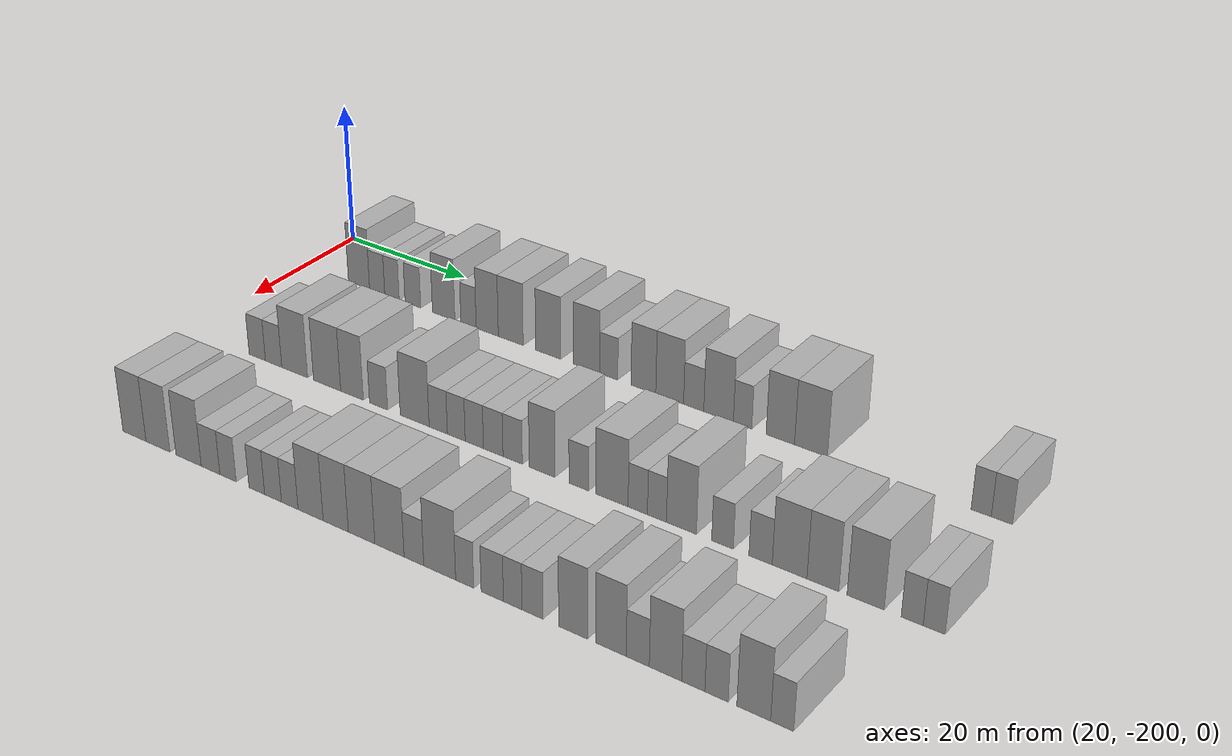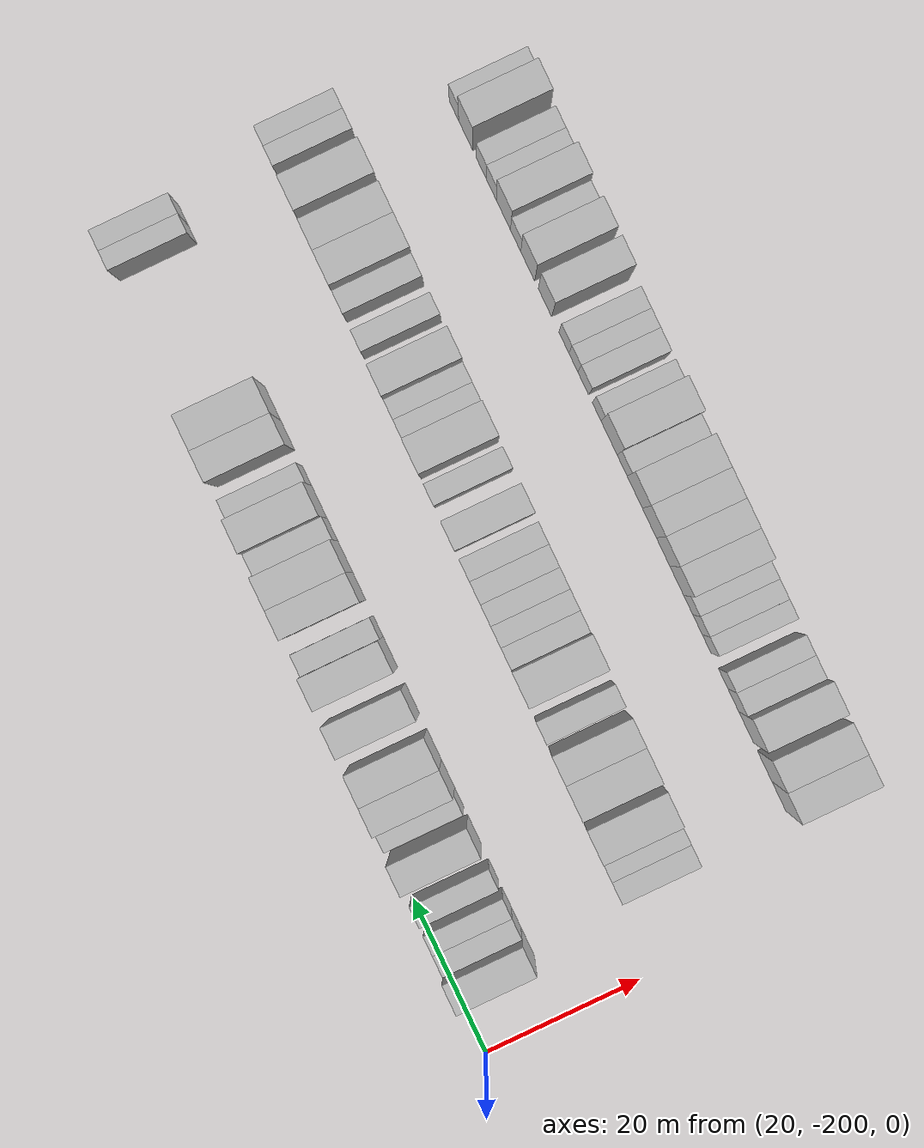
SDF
<sdf version="1.6">
 <world name="default">
  <model name="building_43">
   <static>1</static>
   <pose>25.0000 -190.2338 0 0.000000 0.000000 0.000000</pose>
   <link name="link">
    <pose>0 0 4.50 0 0 0</pose>
    <collision name="collision"><geometry><box><size>10.0000 3.7387 9.0000</size></box></geometry></collision>
    <visual name="visual">
     <cast_shadows>0</cast_shadows>
     <geometry><box><size>10.0000 3.7387 9.0000</size></box></geometry>
     <material>
      <script>
       <uri>model://HANNAS_wall/materials/scripts</uri>
       <uri>model://HANNAS_wall/materials/textures</uri>
       <name>vrc/HANNAS_wall</name>
      </script>
     </material>
    </visual>
   </link>
  </model>
  <model name="building_44">
   <static>1</static>
   <pose>25.0000 -187.0339 0 0.000000 0.000000 0.000000</pose>
   <link name="link">
    <pose>0 0 3.00 0 0 0</pose>
    <collision name="collision"><geometry><box><size>10.0000 2.6612 6.0000</size></box></geometry></collision>
    <visual name="visual">
     <cast_shadows>0</cast_shadows>
     <geometry><box><size>10.0000 2.6612 6.0000</size></box></geometry>
     <material>
      <script>
       <uri>model://HANNAS_wall/materials/scripts</uri>
       <uri>model://HANNAS_wall/materials/textures</uri>
       <name>vrc/HANNAS_wall</name>
      </script>
     </material>
    </visual>
   </link>
  </model>
  <model name="building_45">
   <static>1</static>
   <pose>25.0000 -184.4426 0 0.000000 0.000000 0.000000</pose>
   <link name="link">
    <pose>0 0 3.00 0 0 0</pose>
    <collision name="collision"><geometry><box><size>10.0000 2.5213 6.0000</size></box></geometry></collision>
    <visual name="visual">
     <cast_shadows>0</cast_shadows>
     <geometry><box><size>10.0000 2.5213 6.0000</size></box></geometry>
     <material>
      <script>
       <uri>model://HANNAS_wall/materials/scripts</uri>
       <uri>model://HANNAS_wall/materials/textures</uri>
       <name>vrc/HANNAS_wall</name>
      </script>
     </material>
    </visual>
   </link>
  </model>
  <model name="building_46">
   <static>1</static>
   <pose>25.0000 -180.8359 0 0.000000 0.000000 0.000000</pose>
   <link name="link">
    <pose>0 0 3.00 0 0 0</pose>
    <collision name="collision"><geometry><box><size>10.0000 2.6920 6.0000</size></box></geometry></collision>
    <visual name="visual">
     <cast_shadows>0</cast_shadows>
     <geometry><box><size>10.0000 2.6920 6.0000</size></box></geometry>
     <material>
      <script>
       <uri>model://HANNAS_wall/materials/scripts</uri>
       <uri>model://HANNAS_wall/materials/textures</uri>
       <name>vrc/HANNAS_wall</name>
      </script>
     </material>
    </visual>
   </link>
  </model>
  <model name="building_47">
   <static>1</static>
   <pose>25.0000 -175.6081 0 0.000000 0.000000 0.000000</pose>
   <link name="link">
    <pose>0 0 4.50 0 0 0</pose>
    <collision name="collision"><geometry><box><size>10.0000 3.7636 9.0000</size></box></geometry></collision>
    <visual name="visual">
     <cast_shadows>0</cast_shadows>
     <geometry><box><size>10.0000 3.7636 9.0000</size></box></geometry>
     <material>
      <script>
       <uri>model://HANNAS_wall/materials/scripts</uri>
       <uri>model://HANNAS_wall/materials/textures</uri>
       <name>vrc/HANNAS_wall</name>
      </script>
     </material>
    </visual>
   </link>
  </model>
  <model name="building_48">
   <static>1</static>
   <pose>25.0000 -171.4597 0 0.000000 0.000000 0.000000</pose>
   <link name="link">
    <pose>0 0 3.00 0 0 0</pose>
    <collision name="collision"><geometry><box><size>10.0000 2.5333 6.0000</size></box></geometry></collision>
    <visual name="visual">
     <cast_shadows>0</cast_shadows>
     <geometry><box><size>10.0000 2.5333 6.0000</size></box></geometry>
     <material>
      <script>
       <uri>model://HANNAS_wall/materials/scripts</uri>
       <uri>model://HANNAS_wall/materials/textures</uri>
       <name>vrc/HANNAS_wall</name>
      </script>
     </material>
    </visual>
   </link>
  </model>
  <model name="building_49">
   <static>1</static>
   <pose>25.0000 -168.3847 0 0.000000 0.000000 0.000000</pose>
   <link name="link">
    <pose>0 0 4.50 0 0 0</pose>
    <collision name="collision"><geometry><box><size>10.0000 3.6165 9.0000</size></box></geometry></collision>
    <visual name="visual">
     <cast_shadows>0</cast_shadows>
     <geometry><box><size>10.0000 3.6165 9.0000</size></box></geometry>
     <material>
      <script>
       <uri>model://HANNAS_wall/materials/scripts</uri>
       <uri>model://HANNAS_wall/materials/textures</uri>
       <name>vrc/HANNAS_wall</name>
      </script>
     </material>
    </visual>
   </link>
  </model>
  <model name="building_50">
   <static>1</static>
   <pose>25.0000 -164.5679 0 0.000000 0.000000 0.000000</pose>
   <link name="link">
    <pose>0 0 4.50 0 0 0</pose>
    <collision name="collision"><geometry><box><size>10.0000 4.0173 9.0000</size></box></geometry></collision>
    <visual name="visual">
     <cast_shadows>0</cast_shadows>
     <geometry><box><size>10.0000 4.0173 9.0000</size></box></geometry>
     <material>
      <script>
       <uri>model://HANNAS_wall/materials/scripts</uri>
       <uri>model://HANNAS_wall/materials/textures</uri>
       <name>vrc/HANNAS_wall</name>
      </script>
     </material>
    </visual>
   </link>
  </model>
  <model name="building_51">
   <static>1</static>
   <pose>25.0000 -158.5867 0 0.000000 0.000000 0.000000</pose>
   <link name="link">
    <pose>0 0 4.50 0 0 0</pose>
    <collision name="collision"><geometry><box><size>10.0000 3.9451 9.0000</size></box></geometry></collision>
    <visual name="visual">
     <cast_shadows>0</cast_shadows>
     <geometry><box><size>10.0000 3.9451 9.0000</size></box></geometry>
     <material>
      <script>
       <uri>model://HANNAS_wall/materials/scripts</uri>
       <uri>model://HANNAS_wall/materials/textures</uri>
       <name>vrc/HANNAS_wall</name>
      </script>
     </material>
    </visual>
   </link>
  </model>
  <model name="building_52">
   <static>1</static>
   <pose>25.0000 -152.6099 0 0.000000 0.000000 0.000000</pose>
   <link name="link">
    <pose>0 0 4.50 0 0 0</pose>
    <collision name="collision"><geometry><box><size>10.0000 4.0085 9.0000</size></box></geometry></collision>
    <visual name="visual">
     <cast_shadows>0</cast_shadows>
     <geometry><box><size>10.0000 4.0085 9.0000</size></box></geometry>
     <material>
      <script>
       <uri>model://HANNAS_wall/materials/scripts</uri>
       <uri>model://HANNAS_wall/materials/textures</uri>
       <name>vrc/HANNAS_wall</name>
      </script>
     </material>
    </visual>
   </link>
  </model>
  <model name="building_53">
   <static>1</static>
   <pose>25.0000 -149.2317 0 0.000000 0.000000 0.000000</pose>
   <link name="link">
    <pose>0 0 3.00 0 0 0</pose>
    <collision name="collision"><geometry><box><size>10.0000 2.7478 6.0000</size></box></geometry></collision>
    <visual name="visual">
     <cast_shadows>0</cast_shadows>
     <geometry><box><size>10.0000 2.7478 6.0000</size></box></geometry>
     <material>
      <script>
       <uri>model://HANNAS_wall/materials/scripts</uri>
       <uri>model://HANNAS_wall/materials/textures</uri>
       <name>vrc/HANNAS_wall</name>
      </script>
     </material>
    </visual>
   </link>
  </model>
  <model name="building_54">
   <static>1</static>
   <pose>25.0000 -144.0198 0 0.000000 0.000000 0.000000</pose>
   <link name="link">
    <pose>0 0 4.50 0 0 0</pose>
    <collision name="collision"><geometry><box><size>10.0000 3.6759 9.0000</size></box></geometry></collision>
    <visual name="visual">
     <cast_shadows>0</cast_shadows>
     <geometry><box><size>10.0000 3.6759 9.0000</size></box></geometry>
     <material>
      <script>
       <uri>model://HANNAS_wall/materials/scripts</uri>
       <uri>model://HANNAS_wall/materials/textures</uri>
       <name>vrc/HANNAS_wall</name>
      </script>
     </material>
    </visual>
   </link>
  </model>
  <model name="building_55">
   <static>1</static>
   <pose>25.0000 -140.1416 0 0.000000 0.000000 0.000000</pose>
   <link name="link">
    <pose>0 0 4.50 0 0 0</pose>
    <collision name="collision"><geometry><box><size>10.0000 4.0806 9.0000</size></box></geometry></collision>
    <visual name="visual">
     <cast_shadows>0</cast_shadows>
     <geometry><box><size>10.0000 4.0806 9.0000</size></box></geometry>
     <material>
      <script>
       <uri>model://HANNAS_wall/materials/scripts</uri>
       <uri>model://HANNAS_wall/materials/textures</uri>
       <name>vrc/HANNAS_wall</name>
      </script>
     </material>
    </visual>
   </link>
  </model>
  <model name="building_56">
   <static>1</static>
   <pose>25.0000 -136.6434 0 0.000000 0.000000 0.000000</pose>
   <link name="link">
    <pose>0 0 3.00 0 0 0</pose>
    <collision name="collision"><geometry><box><size>10.0000 2.9158 6.0000</size></box></geometry></collision>
    <visual name="visual">
     <cast_shadows>0</cast_shadows>
     <geometry><box><size>10.0000 2.9158 6.0000</size></box></geometry>
     <material>
      <script>
       <uri>model://HANNAS_wall/materials/scripts</uri>
       <uri>model://HANNAS_wall/materials/textures</uri>
       <name>vrc/HANNAS_wall</name>
      </script>
     </material>
    </visual>
   </link>
  </model>
  <model name="building_57">
   <static>1</static>
   <pose>25.0000 -133.0781 0 0.000000 0.000000 0.000000</pose>
   <link name="link">
    <pose>0 0 4.50 0 0 0</pose>
    <collision name="collision"><geometry><box><size>10.0000 4.2148 9.0000</size></box></geometry></collision>
    <visual name="visual">
     <cast_shadows>0</cast_shadows>
     <geometry><box><size>10.0000 4.2148 9.0000</size></box></geometry>
     <material>
      <script>
       <uri>model://HANNAS_wall/materials/scripts</uri>
       <uri>model://HANNAS_wall/materials/textures</uri>
       <name>vrc/HANNAS_wall</name>
      </script>
     </material>
    </visual>
   </link>
  </model>
  <model name="building_58">
   <static>1</static>
   <pose>25.0000 -129.6807 0 0.000000 0.000000 0.000000</pose>
   <link name="link">
    <pose>0 0 3.00 0 0 0</pose>
    <collision name="collision"><geometry><box><size>10.0000 2.5800 6.0000</size></box></geometry></collision>
    <visual name="visual">
     <cast_shadows>0</cast_shadows>
     <geometry><box><size>10.0000 2.5800 6.0000</size></box></geometry>
     <material>
      <script>
       <uri>model://HANNAS_wall/materials/scripts</uri>
       <uri>model://HANNAS_wall/materials/textures</uri>
       <name>vrc/HANNAS_wall</name>
      </script>
     </material>
    </visual>
   </link>
  </model>
  <model name="building_59">
   <static>1</static>
   <pose>25.0000 -124.4407 0 0.000000 0.000000 0.000000</pose>
   <link name="link">
    <pose>0 0 4.50 0 0 0</pose>
    <collision name="collision"><geometry><box><size>10.0000 3.8999 9.0000</size></box></geometry></collision>
    <visual name="visual">
     <cast_shadows>0</cast_shadows>
     <geometry><box><size>10.0000 3.8999 9.0000</size></box></geometry>
     <material>
      <script>
       <uri>model://HANNAS_wall/materials/scripts</uri>
       <uri>model://HANNAS_wall/materials/textures</uri>
       <name>vrc/HANNAS_wall</name>
      </script>
     </material>
    </visual>
   </link>
  </model>
  <model name="building_60">
   <static>1</static>
   <pose>25.0000 -120.2640 0 0.000000 0.000000 0.000000</pose>
   <link name="link">
    <pose>0 0 4.50 0 0 0</pose>
    <collision name="collision"><geometry><box><size>10.0000 4.4536 9.0000</size></box></geometry></collision>
    <visual name="visual">
     <cast_shadows>0</cast_shadows>
     <geometry><box><size>10.0000 4.4536 9.0000</size></box></geometry>
     <material>
      <script>
       <uri>model://HANNAS_wall/materials/scripts</uri>
       <uri>model://HANNAS_wall/materials/textures</uri>
       <name>vrc/HANNAS_wall</name>
      </script>
     </material>
    </visual>
   </link>
  </model>
  <model name="building_61">
   <static>1</static>
   <pose>25.0000 -98.3337 0 0.000000 0.000000 0.000000</pose>
   <link name="link">
    <pose>0 0 3.00 0 0 0</pose>
    <collision name="collision"><geometry><box><size>10.0000 2.4690 6.0000</size></box></geometry></collision>
    <visual name="visual">
     <cast_shadows>0</cast_shadows>
     <geometry><box><size>10.0000 2.4690 6.0000</size></box></geometry>
     <material>
      <script>
       <uri>model://HANNAS_wall/materials/scripts</uri>
       <uri>model://HANNAS_wall/materials/textures</uri>
       <name>vrc/HANNAS_wall</name>
      </script>
     </material>
    </visual>
   </link>
  </model>
  <model name="building_62">
   <static>1</static>
   <pose>25.0000 -95.8067 0 0.000000 0.000000 0.000000</pose>
   <link name="link">
    <pose>0 0 3.00 0 0 0</pose>
    <collision name="collision"><geometry><box><size>10.0000 2.5849 6.0000</size></box></geometry></collision>
    <visual name="visual">
     <cast_shadows>0</cast_shadows>
     <geometry><box><size>10.0000 2.5849 6.0000</size></box></geometry>
     <material>
      <script>
       <uri>model://HANNAS_wall/materials/scripts</uri>
       <uri>model://HANNAS_wall/materials/textures</uri>
       <name>vrc/HANNAS_wall</name>
      </script>
     </material>
    </visual>
   </link>
  </model>
  <model name="building_236">
   <static>1</static>
   <pose>47.0000 -188.2505 0 0.000000 0.000000 0.000000</pose>
   <link name="link">
    <pose>0 0 3.00 0 0 0</pose>
    <collision name="collision"><geometry><box><size>10.0000 2.7835 6.0000</size></box></geometry></collision>
    <visual name="visual">
     <cast_shadows>0</cast_shadows>
     <geometry><box><size>10.0000 2.7835 6.0000</size></box></geometry>
     <material>
      <script>
       <uri>model://HANNAS_wall/materials/scripts</uri>
       <uri>model://HANNAS_wall/materials/textures</uri>
       <name>vrc/HANNAS_wall</name>
      </script>
     </material>
    </visual>
   </link>
  </model>
  <model name="building_237">
   <static>1</static>
   <pose>47.0000 -185.4579 0 0.000000 0.000000 0.000000</pose>
   <link name="link">
    <pose>0 0 3.00 0 0 0</pose>
    <collision name="collision"><geometry><box><size>10.0000 2.8017 6.0000</size></box></geometry></collision>
    <visual name="visual">
     <cast_shadows>0</cast_shadows>
     <geometry><box><size>10.0000 2.8017 6.0000</size></box></geometry>
     <material>
      <script>
       <uri>model://HANNAS_wall/materials/scripts</uri>
       <uri>model://HANNAS_wall/materials/textures</uri>
       <name>vrc/HANNAS_wall</name>
      </script>
     </material>
    </visual>
   </link>
  </model>
  <model name="building_238">
   <static>1</static>
   <pose>47.0000 -181.8846 0 0.000000 0.000000 0.000000</pose>
   <link name="link">
    <pose>0 0 4.50 0 0 0</pose>
    <collision name="collision"><geometry><box><size>10.0000 4.3451 9.0000</size></box></geometry></collision>
    <visual name="visual">
     <cast_shadows>0</cast_shadows>
     <geometry><box><size>10.0000 4.3451 9.0000</size></box></geometry>
     <material>
      <script>
       <uri>model://HANNAS_wall/materials/scripts</uri>
       <uri>model://HANNAS_wall/materials/textures</uri>
       <name>vrc/HANNAS_wall</name>
      </script>
     </material>
    </visual>
   </link>
  </model>
  <model name="building_239">
   <static>1</static>
   <pose>47.0000 -176.4771 0 0.000000 0.000000 0.000000</pose>
   <link name="link">
    <pose>0 0 4.50 0 0 0</pose>
    <collision name="collision"><geometry><box><size>10.0000 4.4699 9.0000</size></box></geometry></collision>
    <visual name="visual">
     <cast_shadows>0</cast_shadows>
     <geometry><box><size>10.0000 4.4699 9.0000</size></box></geometry>
     <material>
      <script>
       <uri>model://HANNAS_wall/materials/scripts</uri>
       <uri>model://HANNAS_wall/materials/textures</uri>
       <name>vrc/HANNAS_wall</name>
      </script>
     </material>
    </visual>
   </link>
  </model>
  <model name="building_240">
   <static>1</static>
   <pose>47.0000 -172.4099 0 0.000000 0.000000 0.000000</pose>
   <link name="link">
    <pose>0 0 4.50 0 0 0</pose>
    <collision name="collision"><geometry><box><size>10.0000 3.6645 9.0000</size></box></geometry></collision>
    <visual name="visual">
     <cast_shadows>0</cast_shadows>
     <geometry><box><size>10.0000 3.6645 9.0000</size></box></geometry>
     <material>
      <script>
       <uri>model://HANNAS_wall/materials/scripts</uri>
       <uri>model://HANNAS_wall/materials/textures</uri>
       <name>vrc/HANNAS_wall</name>
      </script>
     </material>
    </visual>
   </link>
  </model>
  <model name="building_241">
   <static>1</static>
   <pose>47.0000 -168.1392 0 0.000000 0.000000 0.000000</pose>
   <link name="link">
    <pose>0 0 3.00 0 0 0</pose>
    <collision name="collision"><geometry><box><size>10.0000 2.8770 6.0000</size></box></geometry></collision>
    <visual name="visual">
     <cast_shadows>0</cast_shadows>
     <geometry><box><size>10.0000 2.8770 6.0000</size></box></geometry>
     <material>
      <script>
       <uri>model://HANNAS_wall/materials/scripts</uri>
       <uri>model://HANNAS_wall/materials/textures</uri>
       <name>vrc/HANNAS_wall</name>
      </script>
     </material>
    </visual>
   </link>
  </model>
  <model name="building_242">
   <static>1</static>
   <pose>47.0000 -162.4541 0 0.000000 0.000000 0.000000</pose>
   <link name="link">
    <pose>0 0 4.50 0 0 0</pose>
    <collision name="collision"><geometry><box><size>10.0000 4.4931 9.0000</size></box></geometry></collision>
    <visual name="visual">
     <cast_shadows>0</cast_shadows>
     <geometry><box><size>10.0000 4.4931 9.0000</size></box></geometry>
     <material>
      <script>
       <uri>model://HANNAS_wall/materials/scripts</uri>
       <uri>model://HANNAS_wall/materials/textures</uri>
       <name>vrc/HANNAS_wall</name>
      </script>
     </material>
    </visual>
   </link>
  </model>
  <model name="building_243">
   <static>1</static>
   <pose>47.0000 -158.8077 0 0.000000 0.000000 0.000000</pose>
   <link name="link">
    <pose>0 0 3.00 0 0 0</pose>
    <collision name="collision"><geometry><box><size>10.0000 2.7997 6.0000</size></box></geometry></collision>
    <visual name="visual">
     <cast_shadows>0</cast_shadows>
     <geometry><box><size>10.0000 2.7997 6.0000</size></box></geometry>
     <material>
      <script>
       <uri>model://HANNAS_wall/materials/scripts</uri>
       <uri>model://HANNAS_wall/materials/textures</uri>
       <name>vrc/HANNAS_wall</name>
      </script>
     </material>
    </visual>
   </link>
  </model>
  <model name="building_244">
   <static>1</static>
   <pose>47.0000 -156.0555 0 0.000000 0.000000 0.000000</pose>
   <link name="link">
    <pose>0 0 3.00 0 0 0</pose>
    <collision name="collision"><geometry><box><size>10.0000 2.7047 6.0000</size></box></geometry></collision>
    <visual name="visual">
     <cast_shadows>0</cast_shadows>
     <geometry><box><size>10.0000 2.7047 6.0000</size></box></geometry>
     <material>
      <script>
       <uri>model://HANNAS_wall/materials/scripts</uri>
       <uri>model://HANNAS_wall/materials/textures</uri>
       <name>vrc/HANNAS_wall</name>
      </script>
     </material>
    </visual>
   </link>
  </model>
  <model name="building_245">
   <static>1</static>
   <pose>47.0000 -153.3363 0 0.000000 0.000000 0.000000</pose>
   <link name="link">
    <pose>0 0 3.00 0 0 0</pose>
    <collision name="collision"><geometry><box><size>10.0000 2.7337 6.0000</size></box></geometry></collision>
    <visual name="visual">
     <cast_shadows>0</cast_shadows>
     <geometry><box><size>10.0000 2.7337 6.0000</size></box></geometry>
     <material>
      <script>
       <uri>model://HANNAS_wall/materials/scripts</uri>
       <uri>model://HANNAS_wall/materials/textures</uri>
       <name>vrc/HANNAS_wall</name>
      </script>
     </material>
    </visual>
   </link>
  </model>
  <model name="building_246">
   <static>1</static>
   <pose>47.0000 -150.5230 0 0.000000 0.000000 0.000000</pose>
   <link name="link">
    <pose>0 0 3.00 0 0 0</pose>
    <collision name="collision"><geometry><box><size>10.0000 2.8929 6.0000</size></box></geometry></collision>
    <visual name="visual">
     <cast_shadows>0</cast_shadows>
     <geometry><box><size>10.0000 2.8929 6.0000</size></box></geometry>
     <material>
      <script>
       <uri>model://HANNAS_wall/materials/scripts</uri>
       <uri>model://HANNAS_wall/materials/textures</uri>
       <name>vrc/HANNAS_wall</name>
      </script>
     </material>
    </visual>
   </link>
  </model>
  <model name="building_247">
   <static>1</static>
   <pose>47.0000 -147.6600 0 0.000000 0.000000 0.000000</pose>
   <link name="link">
    <pose>0 0 3.00 0 0 0</pose>
    <collision name="collision"><geometry><box><size>10.0000 2.8329 6.0000</size></box></geometry></collision>
    <visual name="visual">
     <cast_shadows>0</cast_shadows>
     <geometry><box><size>10.0000 2.8329 6.0000</size></box></geometry>
     <material>
      <script>
       <uri>model://HANNAS_wall/materials/scripts</uri>
       <uri>model://HANNAS_wall/materials/textures</uri>
       <name>vrc/HANNAS_wall</name>
      </script>
     </material>
    </visual>
   </link>
  </model>
  <model name="building_248">
   <static>1</static>
   <pose>47.0000 -143.4014 0 0.000000 0.000000 0.000000</pose>
   <link name="link">
    <pose>0 0 4.50 0 0 0</pose>
    <collision name="collision"><geometry><box><size>10.0000 3.6844 9.0000</size></box></geometry></collision>
    <visual name="visual">
     <cast_shadows>0</cast_shadows>
     <geometry><box><size>10.0000 3.6844 9.0000</size></box></geometry>
     <material>
      <script>
       <uri>model://HANNAS_wall/materials/scripts</uri>
       <uri>model://HANNAS_wall/materials/textures</uri>
       <name>vrc/HANNAS_wall</name>
      </script>
     </material>
    </visual>
   </link>
  </model>
  <model name="building_249">
   <static>1</static>
   <pose>47.0000 -138.1746 0 0.000000 0.000000 0.000000</pose>
   <link name="link">
    <pose>0 0 3.00 0 0 0</pose>
    <collision name="collision"><geometry><box><size>10.0000 2.7692 6.0000</size></box></geometry></collision>
    <visual name="visual">
     <cast_shadows>0</cast_shadows>
     <geometry><box><size>10.0000 2.7692 6.0000</size></box></geometry>
     <material>
      <script>
       <uri>model://HANNAS_wall/materials/scripts</uri>
       <uri>model://HANNAS_wall/materials/textures</uri>
       <name>vrc/HANNAS_wall</name>
      </script>
     </material>
    </visual>
   </link>
  </model>
  <model name="building_250">
   <static>1</static>
   <pose>47.0000 -133.5662 0 0.000000 0.000000 0.000000</pose>
   <link name="link">
    <pose>0 0 4.50 0 0 0</pose>
    <collision name="collision"><geometry><box><size>10.0000 4.4476 9.0000</size></box></geometry></collision>
    <visual name="visual">
     <cast_shadows>0</cast_shadows>
     <geometry><box><size>10.0000 4.4476 9.0000</size></box></geometry>
     <material>
      <script>
       <uri>model://HANNAS_wall/materials/scripts</uri>
       <uri>model://HANNAS_wall/materials/textures</uri>
       <name>vrc/HANNAS_wall</name>
      </script>
     </material>
    </visual>
   </link>
  </model>
  <model name="building_251">
   <static>1</static>
   <pose>47.0000 -130.0336 0 0.000000 0.000000 0.000000</pose>
   <link name="link">
    <pose>0 0 3.00 0 0 0</pose>
    <collision name="collision"><geometry><box><size>10.0000 2.6177 6.0000</size></box></geometry></collision>
    <visual name="visual">
     <cast_shadows>0</cast_shadows>
     <geometry><box><size>10.0000 2.6177 6.0000</size></box></geometry>
     <material>
      <script>
       <uri>model://HANNAS_wall/materials/scripts</uri>
       <uri>model://HANNAS_wall/materials/textures</uri>
       <name>vrc/HANNAS_wall</name>
      </script>
     </material>
    </visual>
   </link>
  </model>
  <model name="building_252">
   <static>1</static>
   <pose>47.0000 -127.4500 0 0.000000 0.000000 0.000000</pose>
   <link name="link">
    <pose>0 0 3.00 0 0 0</pose>
    <collision name="collision"><geometry><box><size>10.0000 2.5495 6.0000</size></box></geometry></collision>
    <visual name="visual">
     <cast_shadows>0</cast_shadows>
     <geometry><box><size>10.0000 2.5495 6.0000</size></box></geometry>
     <material>
      <script>
       <uri>model://HANNAS_wall/materials/scripts</uri>
       <uri>model://HANNAS_wall/materials/textures</uri>
       <name>vrc/HANNAS_wall</name>
      </script>
     </material>
    </visual>
   </link>
  </model>
  <model name="building_253">
   <static>1</static>
   <pose>47.0000 -124.1946 0 0.000000 0.000000 0.000000</pose>
   <link name="link">
    <pose>0 0 4.50 0 0 0</pose>
    <collision name="collision"><geometry><box><size>10.0000 3.9613 9.0000</size></box></geometry></collision>
    <visual name="visual">
     <cast_shadows>0</cast_shadows>
     <geometry><box><size>10.0000 3.9613 9.0000</size></box></geometry>
     <material>
      <script>
       <uri>model://HANNAS_wall/materials/scripts</uri>
       <uri>model://HANNAS_wall/materials/textures</uri>
       <name>vrc/HANNAS_wall</name>
      </script>
     </material>
    </visual>
   </link>
  </model>
  <model name="building_254">
   <static>1</static>
   <pose>47.0000 -118.8224 0 0.000000 0.000000 0.000000</pose>
   <link name="link">
    <pose>0 0 3.00 0 0 0</pose>
    <collision name="collision"><geometry><box><size>10.0000 2.7830 6.0000</size></box></geometry></collision>
    <visual name="visual">
     <cast_shadows>0</cast_shadows>
     <geometry><box><size>10.0000 2.7830 6.0000</size></box></geometry>
     <material>
      <script>
       <uri>model://HANNAS_wall/materials/scripts</uri>
       <uri>model://HANNAS_wall/materials/textures</uri>
       <name>vrc/HANNAS_wall</name>
      </script>
     </material>
    </visual>
   </link>
  </model>
  <model name="building_255">
   <static>1</static>
   <pose>47.0000 -113.9640 0 0.000000 0.000000 0.000000</pose>
   <link name="link">
    <pose>0 0 3.00 0 0 0</pose>
    <collision name="collision"><geometry><box><size>10.0000 2.9338 6.0000</size></box></geometry></collision>
    <visual name="visual">
     <cast_shadows>0</cast_shadows>
     <geometry><box><size>10.0000 2.9338 6.0000</size></box></geometry>
     <material>
      <script>
       <uri>model://HANNAS_wall/materials/scripts</uri>
       <uri>model://HANNAS_wall/materials/textures</uri>
       <name>vrc/HANNAS_wall</name>
      </script>
     </material>
    </visual>
   </link>
  </model>
  <model name="building_256">
   <static>1</static>
   <pose>47.0000 -110.3376 0 0.000000 0.000000 0.000000</pose>
   <link name="link">
    <pose>0 0 4.50 0 0 0</pose>
    <collision name="collision"><geometry><box><size>10.0000 4.3189 9.0000</size></box></geometry></collision>
    <visual name="visual">
     <cast_shadows>0</cast_shadows>
     <geometry><box><size>10.0000 4.3189 9.0000</size></box></geometry>
     <material>
      <script>
       <uri>model://HANNAS_wall/materials/scripts</uri>
       <uri>model://HANNAS_wall/materials/textures</uri>
       <name>vrc/HANNAS_wall</name>
      </script>
     </material>
    </visual>
   </link>
  </model>
  <model name="building_257">
   <static>1</static>
   <pose>47.0000 -106.2372 0 0.000000 0.000000 0.000000</pose>
   <link name="link">
    <pose>0 0 4.50 0 0 0</pose>
    <collision name="collision"><geometry><box><size>10.0000 3.8820 9.0000</size></box></geometry></collision>
    <visual name="visual">
     <cast_shadows>0</cast_shadows>
     <geometry><box><size>10.0000 3.8820 9.0000</size></box></geometry>
     <material>
      <script>
       <uri>model://HANNAS_wall/materials/scripts</uri>
       <uri>model://HANNAS_wall/materials/textures</uri>
       <name>vrc/HANNAS_wall</name>
      </script>
     </material>
    </visual>
   </link>
  </model>
  <model name="building_258">
   <static>1</static>
   <pose>47.0000 -101.0920 0 0.000000 0.000000 0.000000</pose>
   <link name="link">
    <pose>0 0 4.50 0 0 0</pose>
    <collision name="collision"><geometry><box><size>10.0000 4.4083 9.0000</size></box></geometry></collision>
    <visual name="visual">
     <cast_shadows>0</cast_shadows>
     <geometry><box><size>10.0000 4.4083 9.0000</size></box></geometry>
     <material>
      <script>
       <uri>model://HANNAS_wall/materials/scripts</uri>
       <uri>model://HANNAS_wall/materials/textures</uri>
       <name>vrc/HANNAS_wall</name>
      </script>
     </material>
    </visual>
   </link>
  </model>
  <model name="building_259">
   <static>1</static>
   <pose>47.0000 -95.6122 0 0.000000 0.000000 0.000000</pose>
   <link name="link">
    <pose>0 0 3.00 0 0 0</pose>
    <collision name="collision"><geometry><box><size>10.0000 2.5513 6.0000</size></box></geometry></collision>
    <visual name="visual">
     <cast_shadows>0</cast_shadows>
     <geometry><box><size>10.0000 2.5513 6.0000</size></box></geometry>
     <material>
      <script>
       <uri>model://HANNAS_wall/materials/scripts</uri>
       <uri>model://HANNAS_wall/materials/textures</uri>
       <name>vrc/HANNAS_wall</name>
      </script>
     </material>
    </visual>
   </link>
  </model>
  <model name="building_260">
   <static>1</static>
   <pose>47.0000 -93.0770 0 0.000000 0.000000 0.000000</pose>
   <link name="link">
    <pose>0 0 3.00 0 0 0</pose>
    <collision name="collision"><geometry><box><size>10.0000 2.5191 6.0000</size></box></geometry></collision>
    <visual name="visual">
     <cast_shadows>0</cast_shadows>
     <geometry><box><size>10.0000 2.5191 6.0000</size></box></geometry>
     <material>
      <script>
       <uri>model://HANNAS_wall/materials/scripts</uri>
       <uri>model://HANNAS_wall/materials/textures</uri>
       <name>vrc/HANNAS_wall</name>
      </script>
     </material>
    </visual>
   </link>
  </model>
  <model name="building_426">
   <static>1</static>
   <pose>69.0000 -187.4682 0 0.000000 0.000000 0.000000</pose>
   <link name="link">
    <pose>0 0 4.50 0 0 0</pose>
    <collision name="collision"><geometry><box><size>10.0000 3.8821 9.0000</size></box></geometry></collision>
    <visual name="visual">
     <cast_shadows>0</cast_shadows>
     <geometry><box><size>10.0000 3.8821 9.0000</size></box></geometry>
     <material>
      <script>
       <uri>model://HANNAS_wall/materials/scripts</uri>
       <uri>model://HANNAS_wall/materials/textures</uri>
       <name>vrc/HANNAS_wall</name>
      </script>
     </material>
    </visual>
   </link>
  </model>
  <model name="building_427">
   <static>1</static>
   <pose>69.0000 -183.5435 0 0.000000 0.000000 0.000000</pose>
   <link name="link">
    <pose>0 0 4.50 0 0 0</pose>
    <collision name="collision"><geometry><box><size>10.0000 3.9672 9.0000</size></box></geometry></collision>
    <visual name="visual">
     <cast_shadows>0</cast_shadows>
     <geometry><box><size>10.0000 3.9672 9.0000</size></box></geometry>
     <material>
      <script>
       <uri>model://HANNAS_wall/materials/scripts</uri>
       <uri>model://HANNAS_wall/materials/textures</uri>
       <name>vrc/HANNAS_wall</name>
      </script>
     </material>
    </visual>
   </link>
  </model>
  <model name="building_428">
   <static>1</static>
   <pose>69.0000 -178.5054 0 0.000000 0.000000 0.000000</pose>
   <link name="link">
    <pose>0 0 4.50 0 0 0</pose>
    <collision name="collision"><geometry><box><size>10.0000 4.1091 9.0000</size></box></geometry></collision>
    <visual name="visual">
     <cast_shadows>0</cast_shadows>
     <geometry><box><size>10.0000 4.1091 9.0000</size></box></geometry>
     <material>
      <script>
       <uri>model://HANNAS_wall/materials/scripts</uri>
       <uri>model://HANNAS_wall/materials/textures</uri>
       <name>vrc/HANNAS_wall</name>
      </script>
     </material>
    </visual>
   </link>
  </model>
  <model name="building_429">
   <static>1</static>
   <pose>69.0000 -174.9589 0 0.000000 0.000000 0.000000</pose>
   <link name="link">
    <pose>0 0 3.00 0 0 0</pose>
    <collision name="collision"><geometry><box><size>10.0000 2.9839 6.0000</size></box></geometry></collision>
    <visual name="visual">
     <cast_shadows>0</cast_shadows>
     <geometry><box><size>10.0000 2.9839 6.0000</size></box></geometry>
     <material>
      <script>
       <uri>model://HANNAS_wall/materials/scripts</uri>
       <uri>model://HANNAS_wall/materials/textures</uri>
       <name>vrc/HANNAS_wall</name>
      </script>
     </material>
    </visual>
   </link>
  </model>
  <model name="building_430">
   <static>1</static>
   <pose>69.0000 -172.1698 0 0.000000 0.000000 0.000000</pose>
   <link name="link">
    <pose>0 0 3.00 0 0 0</pose>
    <collision name="collision"><geometry><box><size>10.0000 2.5944 6.0000</size></box></geometry></collision>
    <visual name="visual">
     <cast_shadows>0</cast_shadows>
     <geometry><box><size>10.0000 2.5944 6.0000</size></box></geometry>
     <material>
      <script>
       <uri>model://HANNAS_wall/materials/scripts</uri>
       <uri>model://HANNAS_wall/materials/textures</uri>
       <name>vrc/HANNAS_wall</name>
      </script>
     </material>
    </visual>
   </link>
  </model>
  <model name="building_431">
   <static>1</static>
   <pose>69.0000 -167.6559 0 0.000000 0.000000 0.000000</pose>
   <link name="link">
    <pose>0 0 3.00 0 0 0</pose>
    <collision name="collision"><geometry><box><size>10.0000 2.4333 6.0000</size></box></geometry></collision>
    <visual name="visual">
     <cast_shadows>0</cast_shadows>
     <geometry><box><size>10.0000 2.4333 6.0000</size></box></geometry>
     <material>
      <script>
       <uri>model://HANNAS_wall/materials/scripts</uri>
       <uri>model://HANNAS_wall/materials/textures</uri>
       <name>vrc/HANNAS_wall</name>
      </script>
     </material>
    </visual>
   </link>
  </model>
  <model name="building_432">
   <static>1</static>
   <pose>69.0000 -165.1497 0 0.000000 0.000000 0.000000</pose>
   <link name="link">
    <pose>0 0 3.00 0 0 0</pose>
    <collision name="collision"><geometry><box><size>10.0000 2.5789 6.0000</size></box></geometry></collision>
    <visual name="visual">
     <cast_shadows>0</cast_shadows>
     <geometry><box><size>10.0000 2.5789 6.0000</size></box></geometry>
     <material>
      <script>
       <uri>model://HANNAS_wall/materials/scripts</uri>
       <uri>model://HANNAS_wall/materials/textures</uri>
       <name>vrc/HANNAS_wall</name>
      </script>
     </material>
    </visual>
   </link>
  </model>
  <model name="building_433">
   <static>1</static>
   <pose>69.0000 -162.6021 0 0.000000 0.000000 0.000000</pose>
   <link name="link">
    <pose>0 0 3.00 0 0 0</pose>
    <collision name="collision"><geometry><box><size>10.0000 2.5164 6.0000</size></box></geometry></collision>
    <visual name="visual">
     <cast_shadows>0</cast_shadows>
     <geometry><box><size>10.0000 2.5164 6.0000</size></box></geometry>
     <material>
      <script>
       <uri>model://HANNAS_wall/materials/scripts</uri>
       <uri>model://HANNAS_wall/materials/textures</uri>
       <name>vrc/HANNAS_wall</name>
      </script>
     </material>
    </visual>
   </link>
  </model>
  <model name="building_434">
   <static>1</static>
   <pose>69.0000 -159.4597 0 0.000000 0.000000 0.000000</pose>
   <link name="link">
    <pose>0 0 4.50 0 0 0</pose>
    <collision name="collision"><geometry><box><size>10.0000 3.7684 9.0000</size></box></geometry></collision>
    <visual name="visual">
     <cast_shadows>0</cast_shadows>
     <geometry><box><size>10.0000 3.7684 9.0000</size></box></geometry>
     <material>
      <script>
       <uri>model://HANNAS_wall/materials/scripts</uri>
       <uri>model://HANNAS_wall/materials/textures</uri>
       <name>vrc/HANNAS_wall</name>
      </script>
     </material>
    </visual>
   </link>
  </model>
  <model name="building_435">
   <static>1</static>
   <pose>69.0000 -155.7160 0 0.000000 0.000000 0.000000</pose>
   <link name="link">
    <pose>0 0 4.50 0 0 0</pose>
    <collision name="collision"><geometry><box><size>10.0000 3.7190 9.0000</size></box></geometry></collision>
    <visual name="visual">
     <cast_shadows>0</cast_shadows>
     <geometry><box><size>10.0000 3.7190 9.0000</size></box></geometry>
     <material>
      <script>
       <uri>model://HANNAS_wall/materials/scripts</uri>
       <uri>model://HANNAS_wall/materials/textures</uri>
       <name>vrc/HANNAS_wall</name>
      </script>
     </material>
    </visual>
   </link>
  </model>
  <model name="building_436">
   <static>1</static>
   <pose>69.0000 -151.9419 0 0.000000 0.000000 0.000000</pose>
   <link name="link">
    <pose>0 0 4.50 0 0 0</pose>
    <collision name="collision"><geometry><box><size>10.0000 3.8292 9.0000</size></box></geometry></collision>
    <visual name="visual">
     <cast_shadows>0</cast_shadows>
     <geometry><box><size>10.0000 3.8292 9.0000</size></box></geometry>
     <material>
      <script>
       <uri>model://HANNAS_wall/materials/scripts</uri>
       <uri>model://HANNAS_wall/materials/textures</uri>
       <name>vrc/HANNAS_wall</name>
      </script>
     </material>
    </visual>
   </link>
  </model>
  <model name="building_437">
   <static>1</static>
   <pose>69.0000 -147.9425 0 0.000000 0.000000 0.000000</pose>
   <link name="link">
    <pose>0 0 4.50 0 0 0</pose>
    <collision name="collision"><geometry><box><size>10.0000 4.1696 9.0000</size></box></geometry></collision>
    <visual name="visual">
     <cast_shadows>0</cast_shadows>
     <geometry><box><size>10.0000 4.1696 9.0000</size></box></geometry>
     <material>
      <script>
       <uri>model://HANNAS_wall/materials/scripts</uri>
       <uri>model://HANNAS_wall/materials/textures</uri>
       <name>vrc/HANNAS_wall</name>
      </script>
     </material>
    </visual>
   </link>
  </model>
  <model name="building_438">
   <static>1</static>
   <pose>69.0000 -144.4810 0 0.000000 0.000000 0.000000</pose>
   <link name="link">
    <pose>0 0 3.00 0 0 0</pose>
    <collision name="collision"><geometry><box><size>10.0000 2.7535 6.0000</size></box></geometry></collision>
    <visual name="visual">
     <cast_shadows>0</cast_shadows>
     <geometry><box><size>10.0000 2.7535 6.0000</size></box></geometry>
     <material>
      <script>
       <uri>model://HANNAS_wall/materials/scripts</uri>
       <uri>model://HANNAS_wall/materials/textures</uri>
       <name>vrc/HANNAS_wall</name>
      </script>
     </material>
    </visual>
   </link>
  </model>
  <model name="building_439">
   <static>1</static>
   <pose>69.0000 -140.9079 0 0.000000 0.000000 0.000000</pose>
   <link name="link">
    <pose>0 0 4.50 0 0 0</pose>
    <collision name="collision"><geometry><box><size>10.0000 4.3927 9.0000</size></box></geometry></collision>
    <visual name="visual">
     <cast_shadows>0</cast_shadows>
     <geometry><box><size>10.0000 4.3927 9.0000</size></box></geometry>
     <material>
      <script>
       <uri>model://HANNAS_wall/materials/scripts</uri>
       <uri>model://HANNAS_wall/materials/textures</uri>
       <name>vrc/HANNAS_wall</name>
      </script>
     </material>
    </visual>
   </link>
  </model>
  <model name="building_440">
   <static>1</static>
   <pose>69.0000 -137.4814 0 0.000000 0.000000 0.000000</pose>
   <link name="link">
    <pose>0 0 3.00 0 0 0</pose>
    <collision name="collision"><geometry><box><size>10.0000 2.4604 6.0000</size></box></geometry></collision>
    <visual name="visual">
     <cast_shadows>0</cast_shadows>
     <geometry><box><size>10.0000 2.4604 6.0000</size></box></geometry>
     <material>
      <script>
       <uri>model://HANNAS_wall/materials/scripts</uri>
       <uri>model://HANNAS_wall/materials/textures</uri>
       <name>vrc/HANNAS_wall</name>
      </script>
     </material>
    </visual>
   </link>
  </model>
  <model name="building_441">
   <static>1</static>
   <pose>69.0000 -133.7708 0 0.000000 0.000000 0.000000</pose>
   <link name="link">
    <pose>0 0 3.00 0 0 0</pose>
    <collision name="collision"><geometry><box><size>10.0000 2.9607 6.0000</size></box></geometry></collision>
    <visual name="visual">
     <cast_shadows>0</cast_shadows>
     <geometry><box><size>10.0000 2.9607 6.0000</size></box></geometry>
     <material>
      <script>
       <uri>model://HANNAS_wall/materials/scripts</uri>
       <uri>model://HANNAS_wall/materials/textures</uri>
       <name>vrc/HANNAS_wall</name>
      </script>
     </material>
    </visual>
   </link>
  </model>
  <model name="building_442">
   <static>1</static>
   <pose>69.0000 -131.0648 0 0.000000 0.000000 0.000000</pose>
   <link name="link">
    <pose>0 0 3.00 0 0 0</pose>
    <collision name="collision"><geometry><box><size>10.0000 2.4513 6.0000</size></box></geometry></collision>
    <visual name="visual">
     <cast_shadows>0</cast_shadows>
     <geometry><box><size>10.0000 2.4513 6.0000</size></box></geometry>
     <material>
      <script>
       <uri>model://HANNAS_wall/materials/scripts</uri>
       <uri>model://HANNAS_wall/materials/textures</uri>
       <name>vrc/HANNAS_wall</name>
      </script>
     </material>
    </visual>
   </link>
  </model>
  <model name="building_443">
   <static>1</static>
   <pose>69.0000 -128.4711 0 0.000000 0.000000 0.000000</pose>
   <link name="link">
    <pose>0 0 3.00 0 0 0</pose>
    <collision name="collision"><geometry><box><size>10.0000 2.7361 6.0000</size></box></geometry></collision>
    <visual name="visual">
     <cast_shadows>0</cast_shadows>
     <geometry><box><size>10.0000 2.7361 6.0000</size></box></geometry>
     <material>
      <script>
       <uri>model://HANNAS_wall/materials/scripts</uri>
       <uri>model://HANNAS_wall/materials/textures</uri>
       <name>vrc/HANNAS_wall</name>
      </script>
     </material>
    </visual>
   </link>
  </model>
  <model name="building_444">
   <static>1</static>
   <pose>69.0000 -123.2670 0 0.000000 0.000000 0.000000</pose>
   <link name="link">
    <pose>0 0 4.50 0 0 0</pose>
    <collision name="collision"><geometry><box><size>10.0000 3.6721 9.0000</size></box></geometry></collision>
    <visual name="visual">
     <cast_shadows>0</cast_shadows>
     <geometry><box><size>10.0000 3.6721 9.0000</size></box></geometry>
     <material>
      <script>
       <uri>model://HANNAS_wall/materials/scripts</uri>
       <uri>model://HANNAS_wall/materials/textures</uri>
       <name>vrc/HANNAS_wall</name>
      </script>
     </material>
    </visual>
   </link>
  </model>
  <model name="building_445">
   <static>1</static>
   <pose>69.0000 -118.5284 0 0.000000 0.000000 0.000000</pose>
   <link name="link">
    <pose>0 0 4.50 0 0 0</pose>
    <collision name="collision"><geometry><box><size>10.0000 3.8051 9.0000</size></box></geometry></collision>
    <visual name="visual">
     <cast_shadows>0</cast_shadows>
     <geometry><box><size>10.0000 3.8051 9.0000</size></box></geometry>
     <material>
      <script>
       <uri>model://HANNAS_wall/materials/scripts</uri>
       <uri>model://HANNAS_wall/materials/textures</uri>
       <name>vrc/HANNAS_wall</name>
      </script>
     </material>
    </visual>
   </link>
  </model>
  <model name="building_446">
   <static>1</static>
   <pose>69.0000 -115.2201 0 0.000000 0.000000 0.000000</pose>
   <link name="link">
    <pose>0 0 3.00 0 0 0</pose>
    <collision name="collision"><geometry><box><size>10.0000 2.8115 6.0000</size></box></geometry></collision>
    <visual name="visual">
     <cast_shadows>0</cast_shadows>
     <geometry><box><size>10.0000 2.8115 6.0000</size></box></geometry>
     <material>
      <script>
       <uri>model://HANNAS_wall/materials/scripts</uri>
       <uri>model://HANNAS_wall/materials/textures</uri>
       <name>vrc/HANNAS_wall</name>
      </script>
     </material>
    </visual>
   </link>
  </model>
  <model name="building_447">
   <static>1</static>
   <pose>69.0000 -111.8711 0 0.000000 0.000000 0.000000</pose>
   <link name="link">
    <pose>0 0 4.50 0 0 0</pose>
    <collision name="collision"><geometry><box><size>10.0000 3.8865 9.0000</size></box></geometry></collision>
    <visual name="visual">
     <cast_shadows>0</cast_shadows>
     <geometry><box><size>10.0000 3.8865 9.0000</size></box></geometry>
     <material>
      <script>
       <uri>model://HANNAS_wall/materials/scripts</uri>
       <uri>model://HANNAS_wall/materials/textures</uri>
       <name>vrc/HANNAS_wall</name>
      </script>
     </material>
    </visual>
   </link>
  </model>
  <model name="building_448">
   <static>1</static>
   <pose>69.0000 -108.5573 0 0.000000 0.000000 0.000000</pose>
   <link name="link">
    <pose>0 0 3.00 0 0 0</pose>
    <collision name="collision"><geometry><box><size>10.0000 2.7411 6.0000</size></box></geometry></collision>
    <visual name="visual">
     <cast_shadows>0</cast_shadows>
     <geometry><box><size>10.0000 2.7411 6.0000</size></box></geometry>
     <material>
      <script>
       <uri>model://HANNAS_wall/materials/scripts</uri>
       <uri>model://HANNAS_wall/materials/textures</uri>
       <name>vrc/HANNAS_wall</name>
      </script>
     </material>
    </visual>
   </link>
  </model>
  <model name="building_449">
   <static>1</static>
   <pose>69.0000 -105.8271 0 0.000000 0.000000 0.000000</pose>
   <link name="link">
    <pose>0 0 3.00 0 0 0</pose>
    <collision name="collision"><geometry><box><size>10.0000 2.7194 6.0000</size></box></geometry></collision>
    <visual name="visual">
     <cast_shadows>0</cast_shadows>
     <geometry><box><size>10.0000 2.7194 6.0000</size></box></geometry>
     <material>
      <script>
       <uri>model://HANNAS_wall/materials/scripts</uri>
       <uri>model://HANNAS_wall/materials/textures</uri>
       <name>vrc/HANNAS_wall</name>
      </script>
     </material>
    </visual>
   </link>
  </model>
  <model name="building_450">
   <static>1</static>
   <pose>69.0000 -101.5396 0 0.000000 0.000000 0.000000</pose>
   <link name="link">
    <pose>0 0 4.50 0 0 0</pose>
    <collision name="collision"><geometry><box><size>10.0000 3.8555 9.0000</size></box></geometry></collision>
    <visual name="visual">
     <cast_shadows>0</cast_shadows>
     <geometry><box><size>10.0000 3.8555 9.0000</size></box></geometry>
     <material>
      <script>
       <uri>model://HANNAS_wall/materials/scripts</uri>
       <uri>model://HANNAS_wall/materials/textures</uri>
       <name>vrc/HANNAS_wall</name>
      </script>
     </material>
    </visual>
   </link>
  </model>
  <model name="building_451">
   <static>1</static>
   <pose>69.0000 -98.3170 0 0.000000 0.000000 0.000000</pose>
   <link name="link">
    <pose>0 0 3.00 0 0 0</pose>
    <collision name="collision"><geometry><box><size>10.0000 2.5897 6.0000</size></box></geometry></collision>
    <visual name="visual">
     <cast_shadows>0</cast_shadows>
     <geometry><box><size>10.0000 2.5897 6.0000</size></box></geometry>
     <material>
      <script>
       <uri>model://HANNAS_wall/materials/scripts</uri>
       <uri>model://HANNAS_wall/materials/textures</uri>
       <name>vrc/HANNAS_wall</name>
      </script>
     </material>
    </visual>
   </link>
  </model>
 </world>
</sdf>
